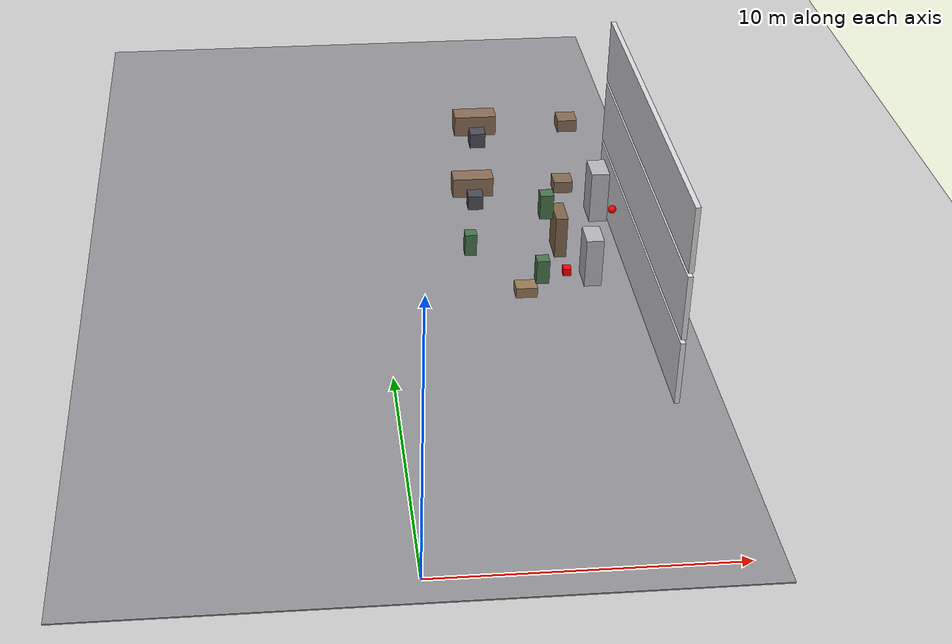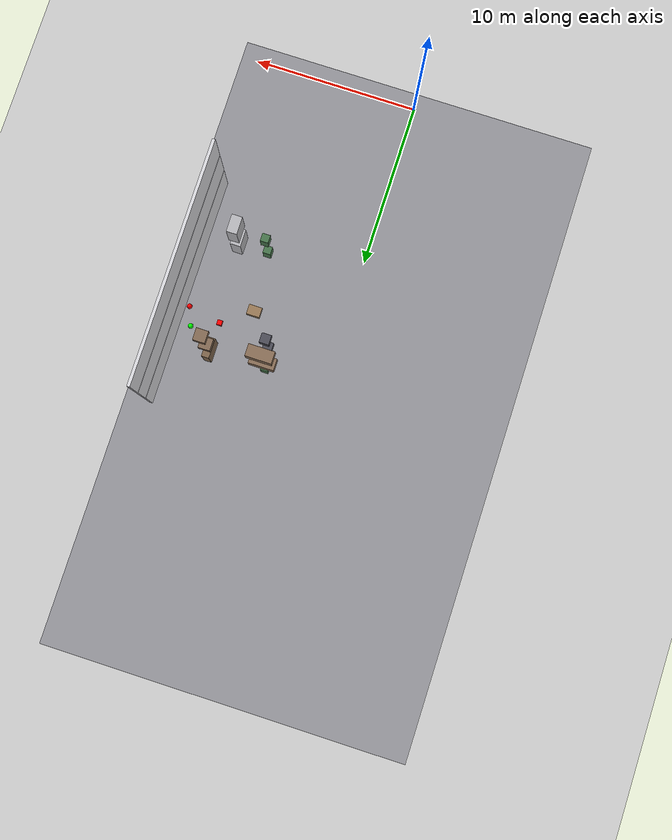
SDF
<sdf version="1.7">
 <world name="generated_world">
  <include><uri>model://sun</uri></include>
  <include><uri>model://ground_plane</uri></include>
  <model name="generated_building">
   <static>true</static>
   <link name="foundation">
    <pose>0.0000 18.0000 -0.1500 0.0000 0.0000 0.0000</pose>
    <collision name="foundation_collision">
     <geometry><box><size>22.0000 38.0000 0.3000</size></box></geometry>
    </collision>
    <visual name="foundation_visual">
     <geometry><box><size>22.0000 38.0000 0.3000</size></box></geometry>
     <material><ambient>0.58 0.58 0.60 1</ambient><diffuse>0.58 0.58 0.60 1</diffuse></material>
    </visual>
    <gravity>false</gravity>
   </link>
   <link name="floor_0_room_1_east_wall">
    <pose>9.4100 14.8650 1.2250 0.0000 0.0000 0.0000</pose>
    <collision name="floor_0_room_1_east_wall_collision">
     <geometry><box><size>0.1800 14.0300 2.4500</size></box></geometry>
    </collision>
    <visual name="floor_0_room_1_east_wall_visual">
     <geometry><box><size>0.1800 14.0300 2.4500</size></box></geometry>
     <material><ambient>0.86 0.86 0.88 1</ambient><diffuse>0.86 0.86 0.88 1</diffuse></material>
    </visual>
    <gravity>false</gravity>
   </link>
   <link name="floor_0_room_1_coffee_table">
    <pose>5.3000 14.8650 0.2500 0.0000 0.0000 0.0000</pose>
    <collision name="floor_0_room_1_coffee_table_collision">
     <geometry><box><size>0.8000 0.6000 0.4000</size></box></geometry>
    </collision>
    <visual name="floor_0_room_1_coffee_table_visual">
     <geometry><box><size>0.8000 0.6000 0.4000</size></box></geometry>
     <material><ambient>0.60 0.48 0.34 1</ambient><diffuse>0.60 0.48 0.34 1</diffuse></material>
    </visual>
    <gravity>false</gravity>
   </link>
   <link name="floor_0_room_1_bookshelf">
    <pose>7.0000 17.9225 0.8500 0.0000 0.0000 0.0000</pose>
    <collision name="floor_0_room_1_bookshelf_collision">
     <geometry><box><size>0.4500 1.2000 1.7000</size></box></geometry>
    </collision>
    <visual name="floor_0_room_1_bookshelf_visual">
     <geometry><box><size>0.4500 1.2000 1.7000</size></box></geometry>
     <material><ambient>0.50 0.40 0.30 1</ambient><diffuse>0.50 0.40 0.30 1</diffuse></material>
    </visual>
    <gravity>false</gravity>
   </link>
   <link name="floor_0_room_1_planter">
    <pose>3.6000 17.9225 0.4500 0.0000 0.0000 0.0000</pose>
    <collision name="floor_0_room_1_planter_collision">
     <geometry><box><size>0.4500 0.4500 0.9000</size></box></geometry>
    </collision>
    <visual name="floor_0_room_1_planter_visual">
     <geometry><box><size>0.4500 0.4500 0.9000</size></box></geometry>
     <material><ambient>0.28 0.46 0.30 1</ambient><diffuse>0.28 0.46 0.30 1</diffuse></material>
    </visual>
    <gravity>false</gravity>
   </link>
   <link name="floor_1_room_1_east_wall">
    <pose>9.4100 14.8650 3.8250 0.0000 0.0000 0.0000</pose>
    <collision name="floor_1_room_1_east_wall_collision">
     <geometry><box><size>0.1800 14.0300 2.4500</size></box></geometry>
    </collision>
    <visual name="floor_1_room_1_east_wall_visual">
     <geometry><box><size>0.1800 14.0300 2.4500</size></box></geometry>
     <material><ambient>0.86 0.86 0.88 1</ambient><diffuse>0.86 0.86 0.88 1</diffuse></material>
    </visual>
    <gravity>false</gravity>
   </link>
   <link name="floor_1_room_1_desk">
    <pose>3.6000 17.9225 3.0500 0.0000 0.0000 0.0000</pose>
    <collision name="floor_1_room_1_desk_collision">
     <geometry><box><size>1.5000 0.7000 0.7500</size></box></geometry>
    </collision>
    <visual name="floor_1_room_1_desk_visual">
     <geometry><box><size>1.5000 0.7000 0.7500</size></box></geometry>
     <material><ambient>0.54 0.43 0.34 1</ambient><diffuse>0.54 0.43 0.34 1</diffuse></material>
    </visual>
    <gravity>false</gravity>
   </link>
   <link name="floor_1_room_1_chair">
    <pose>3.6000 17.0225 2.8800 0.0000 0.0000 0.0000</pose>
    <collision name="floor_1_room_1_chair_collision">
     <geometry><box><size>0.5500 0.5500 0.5500</size></box></geometry>
    </collision>
    <visual name="floor_1_room_1_chair_visual">
     <geometry><box><size>0.5500 0.5500 0.5500</size></box></geometry>
     <material><ambient>0.30 0.30 0.34 1</ambient><diffuse>0.30 0.30 0.34 1</diffuse></material>
    </visual>
    <gravity>false</gravity>
   </link>
   <link name="floor_1_room_1_cabinet">
    <pose>7.0000 11.8075 3.5000 0.0000 0.0000 0.0000</pose>
    <collision name="floor_1_room_1_cabinet_collision">
     <geometry><box><size>0.6000 1.0000 1.8000</size></box></geometry>
    </collision>
    <visual name="floor_1_room_1_cabinet_visual">
     <geometry><box><size>0.6000 1.0000 1.8000</size></box></geometry>
     <material><ambient>0.72 0.72 0.74 1</ambient><diffuse>0.72 0.72 0.74 1</diffuse></material>
    </visual>
    <gravity>false</gravity>
   </link>
   <link name="floor_1_room_1_side_table">
    <pose>7.0000 17.9225 2.9200 0.0000 0.0000 0.0000</pose>
    <collision name="floor_1_room_1_side_table_collision">
     <geometry><box><size>0.7000 0.7000 0.4500</size></box></geometry>
    </collision>
    <visual name="floor_1_room_1_side_table_visual">
     <geometry><box><size>0.7000 0.7000 0.4500</size></box></geometry>
     <material><ambient>0.52 0.42 0.33 1</ambient><diffuse>0.52 0.42 0.33 1</diffuse></material>
    </visual>
    <gravity>false</gravity>
   </link>
   <link name="floor_1_room_1_planter">
    <pose>5.3000 11.8075 3.0500 0.0000 0.0000 0.0000</pose>
    <collision name="floor_1_room_1_planter_collision">
     <geometry><box><size>0.4500 0.4500 0.9000</size></box></geometry>
    </collision>
    <visual name="floor_1_room_1_planter_visual">
     <geometry><box><size>0.4500 0.4500 0.9000</size></box></geometry>
     <material><ambient>0.28 0.46 0.30 1</ambient><diffuse>0.28 0.46 0.30 1</diffuse></material>
    </visual>
    <gravity>false</gravity>
   </link>
   <link name="floor_2_room_1_east_wall">
    <pose>9.4100 14.8650 6.4250 0.0000 0.0000 0.0000</pose>
    <collision name="floor_2_room_1_east_wall_collision">
     <geometry><box><size>0.1800 14.0300 2.4500</size></box></geometry>
    </collision>
    <visual name="floor_2_room_1_east_wall_visual">
     <geometry><box><size>0.1800 14.0300 2.4500</size></box></geometry>
     <material><ambient>0.86 0.86 0.88 1</ambient><diffuse>0.86 0.86 0.88 1</diffuse></material>
    </visual>
    <gravity>false</gravity>
   </link>
   <link name="floor_2_room_1_desk">
    <pose>3.6000 17.9225 5.6500 0.0000 0.0000 0.0000</pose>
    <collision name="floor_2_room_1_desk_collision">
     <geometry><box><size>1.5000 0.7000 0.7500</size></box></geometry>
    </collision>
    <visual name="floor_2_room_1_desk_visual">
     <geometry><box><size>1.5000 0.7000 0.7500</size></box></geometry>
     <material><ambient>0.54 0.43 0.34 1</ambient><diffuse>0.54 0.43 0.34 1</diffuse></material>
    </visual>
    <gravity>false</gravity>
   </link>
   <link name="floor_2_room_1_chair">
    <pose>3.6000 17.0225 5.4800 0.0000 0.0000 0.0000</pose>
    <collision name="floor_2_room_1_chair_collision">
     <geometry><box><size>0.5500 0.5500 0.5500</size></box></geometry>
    </collision>
    <visual name="floor_2_room_1_chair_visual">
     <geometry><box><size>0.5500 0.5500 0.5500</size></box></geometry>
     <material><ambient>0.30 0.30 0.34 1</ambient><diffuse>0.30 0.30 0.34 1</diffuse></material>
    </visual>
    <gravity>false</gravity>
   </link>
   <link name="floor_2_room_1_cabinet">
    <pose>7.0000 11.8075 6.1000 0.0000 0.0000 0.0000</pose>
    <collision name="floor_2_room_1_cabinet_collision">
     <geometry><box><size>0.6000 1.0000 1.8000</size></box></geometry>
    </collision>
    <visual name="floor_2_room_1_cabinet_visual">
     <geometry><box><size>0.6000 1.0000 1.8000</size></box></geometry>
     <material><ambient>0.72 0.72 0.74 1</ambient><diffuse>0.72 0.72 0.74 1</diffuse></material>
    </visual>
    <gravity>false</gravity>
   </link>
   <link name="floor_2_room_1_side_table">
    <pose>7.0000 17.9225 5.5200 0.0000 0.0000 0.0000</pose>
    <collision name="floor_2_room_1_side_table_collision">
     <geometry><box><size>0.7000 0.7000 0.4500</size></box></geometry>
    </collision>
    <visual name="floor_2_room_1_side_table_visual">
     <geometry><box><size>0.7000 0.7000 0.4500</size></box></geometry>
     <material><ambient>0.52 0.42 0.33 1</ambient><diffuse>0.52 0.42 0.33 1</diffuse></material>
    </visual>
    <gravity>false</gravity>
   </link>
   <link name="floor_2_room_1_planter">
    <pose>5.3000 11.8075 5.6500 0.0000 0.0000 0.0000</pose>
    <collision name="floor_2_room_1_planter_collision">
     <geometry><box><size>0.4500 0.4500 0.9000</size></box></geometry>
    </collision>
    <visual name="floor_2_room_1_planter_visual">
     <geometry><box><size>0.4500 0.4500 0.9000</size></box></geometry>
     <material><ambient>0.28 0.46 0.30 1</ambient><diffuse>0.28 0.46 0.30 1</diffuse></material>
    </visual>
    <gravity>false</gravity>
   </link>
  </model>
  <model name="danger_red_sphere_05">
   <static>true</static>
   <pose>8.602589 16.126943 2.750000 0.000000 0.000000 0.000000</pose>
   <link name="link">
    <collision name="collision"><geometry><sphere><radius>0.150</radius></sphere></geometry></collision>
    <visual name="visual">
     <geometry><sphere><radius>0.150</radius></sphere></geometry>
     <material><ambient>1.0 0.0 0.0 1.0</ambient><diffuse>1.0 0.0 0.0 1.0</diffuse></material>
    </visual>
   </link>
  </model>
  <model name="distractor_green_sphere_13">
   <static>true</static>
   <pose>8.176384 17.191174 2.750000 0.000000 0.000000 0.000000</pose>
   <link name="link">
    <collision name="collision"><geometry><sphere><radius>0.150</radius></sphere></geometry></collision>
    <visual name="visual">
     <geometry><sphere><radius>0.150</radius></sphere></geometry>
     <material><ambient>0.0 1.0 0.0 1.0</ambient><diffuse>0.0 1.0 0.0 1.0</diffuse></material>
    </visual>
   </link>
  </model>
  <model name="distractor_red_box_19">
   <static>true</static>
   <pose>7.049149 16.137971 0.150000 0.000000 0.000000 0.000000</pose>
   <link name="link">
    <collision name="collision">
     <geometry><box><size>0.300000 0.300000 0.300000</size></box></geometry>
    </collision>
    <visual name="visual">
     <geometry><box><size>0.300000 0.300000 0.300000</size></box></geometry>
     <material><ambient>1.0 0.0 0.0 1.0</ambient><diffuse>1.0 0.0 0.0 1.0</diffuse></material>
    </visual>
   </link>
  </model>
 </world>
</sdf>
